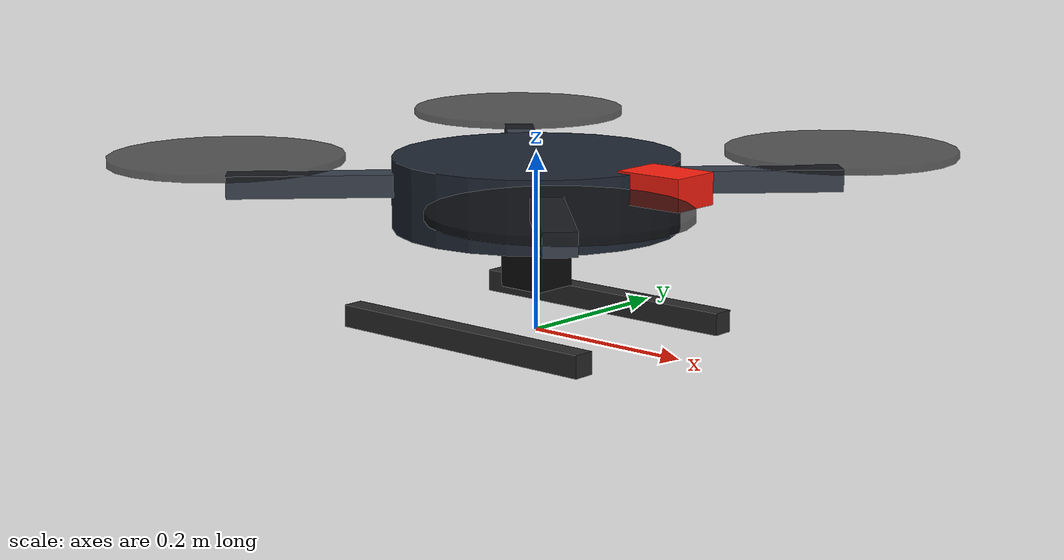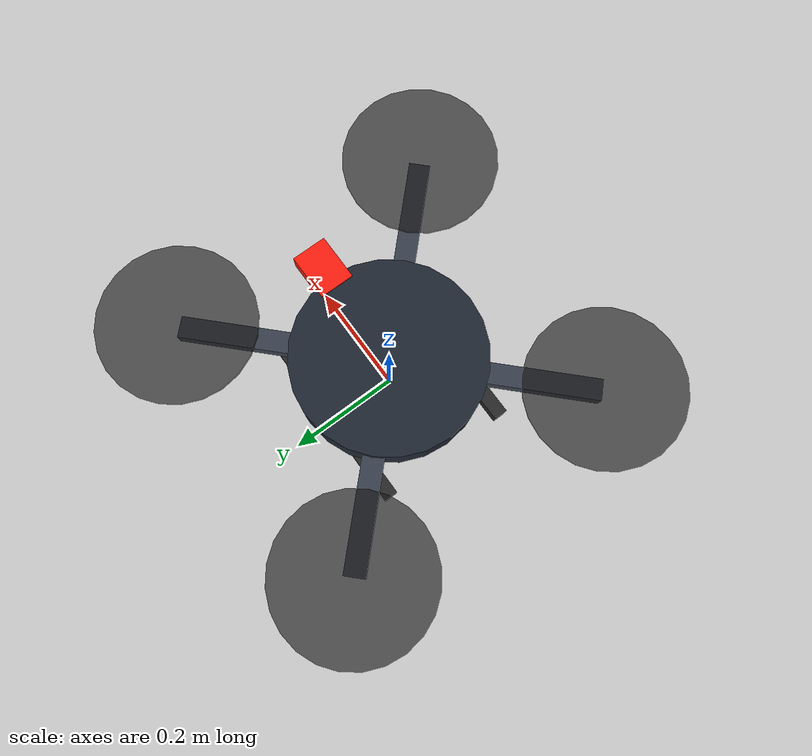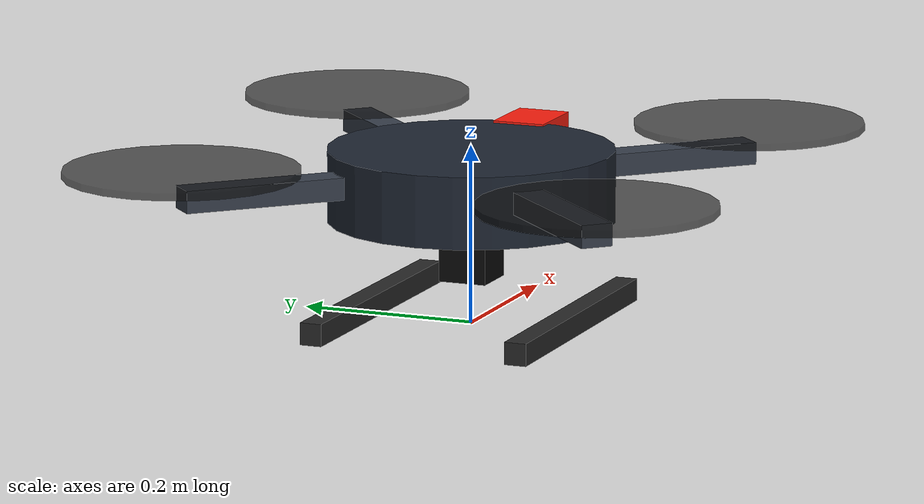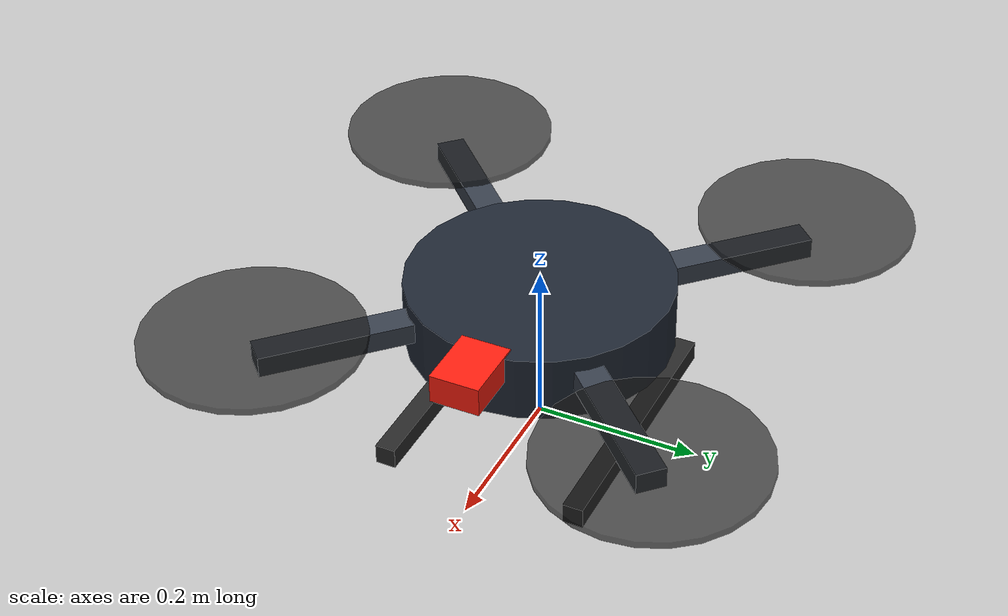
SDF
<?xml version="1.0"?>
<sdf version="1.9">
  <model name="map_preview_drone">
    <static>true</static>
    <link name="body">
      <collision name="body_collision">
        <pose>0 0 0.1575 0 0 0</pose>
        <geometry><cylinder><radius>0.16</radius><length>0.08</length></cylinder></geometry>
      </collision>
      <visual name="body_visual">
        <pose>0 0 0.1575 0 0 0</pose>
        <geometry><cylinder><radius>0.16</radius><length>0.08</length></cylinder></geometry>
        <material><ambient>0.08 0.10 0.13 1</ambient><diffuse>0.12 0.15 0.20 1</diffuse></material>
      </visual>
      <visual name="arm_ne_sw">
        <pose>0 0 0.1675 0 0 0.785398</pose>
        <geometry><box><size>0.68 0.035 0.025</size></box></geometry>
        <material><ambient>0.15 0.17 0.20 1</ambient><diffuse>0.22 0.25 0.30 1</diffuse></material>
      </visual>
      <visual name="arm_nw_se">
        <pose>0 0 0.1675 0 0 -0.785398</pose>
        <geometry><box><size>0.68 0.035 0.025</size></box></geometry>
        <material><ambient>0.15 0.17 0.20 1</ambient><diffuse>0.22 0.25 0.30 1</diffuse></material>
      </visual>
      <visual name="rotor_front_left">
        <pose>0.24 0.24 0.1975 0 0 0</pose>
        <geometry><cylinder><radius>0.13</radius><length>0.008</length></cylinder></geometry>
        <material><ambient>0.05 0.05 0.05 0.65</ambient><diffuse>0.08 0.08 0.08 0.65</diffuse></material>
      </visual>
      <visual name="rotor_front_right">
        <pose>0.24 -0.24 0.1975 0 0 0</pose>
        <geometry><cylinder><radius>0.13</radius><length>0.008</length></cylinder></geometry>
        <material><ambient>0.05 0.05 0.05 0.65</ambient><diffuse>0.08 0.08 0.08 0.65</diffuse></material>
      </visual>
      <visual name="rotor_rear_left">
        <pose>-0.24 0.24 0.1975 0 0 0</pose>
        <geometry><cylinder><radius>0.13</radius><length>0.008</length></cylinder></geometry>
        <material><ambient>0.05 0.05 0.05 0.65</ambient><diffuse>0.08 0.08 0.08 0.65</diffuse></material>
      </visual>
      <visual name="rotor_rear_right">
        <pose>-0.24 -0.24 0.1975 0 0 0</pose>
        <geometry><cylinder><radius>0.13</radius><length>0.008</length></cylinder></geometry>
        <material><ambient>0.05 0.05 0.05 0.65</ambient><diffuse>0.08 0.08 0.08 0.65</diffuse></material>
      </visual>
      <visual name="front_marker">
        <pose>0.18 0 0.1825 0 0 0</pose>
        <geometry><box><size>0.08 0.06 0.035</size></box></geometry>
        <material><ambient>0.9 0.08 0.04 1</ambient><diffuse>1 0.12 0.06 1</diffuse></material>
      </visual>
      <visual name="down_camera">
        <pose>0 0 0.0775 0 0 0</pose>
        <geometry><box><size>0.055 0.055 0.055</size></box></geometry>
        <material><ambient>0.02 0.02 0.02 1</ambient><diffuse>0.04 0.04 0.04 1</diffuse></material>
      </visual>
      <visual name="landing_gear_left">
        <pose>0 0.12 0.0125 0 0 0</pose>
        <geometry><box><size>0.34 0.025 0.025</size></box></geometry>
        <material><ambient>0.1 0.1 0.1 1</ambient><diffuse>0.16 0.16 0.16 1</diffuse></material>
      </visual>
      <visual name="landing_gear_right">
        <pose>0 -0.12 0.0125 0 0 0</pose>
        <geometry><box><size>0.34 0.025 0.025</size></box></geometry>
        <material><ambient>0.1 0.1 0.1 1</ambient><diffuse>0.16 0.16 0.16 1</diffuse></material>
      </visual>
    </link>
  </model>
</sdf>
